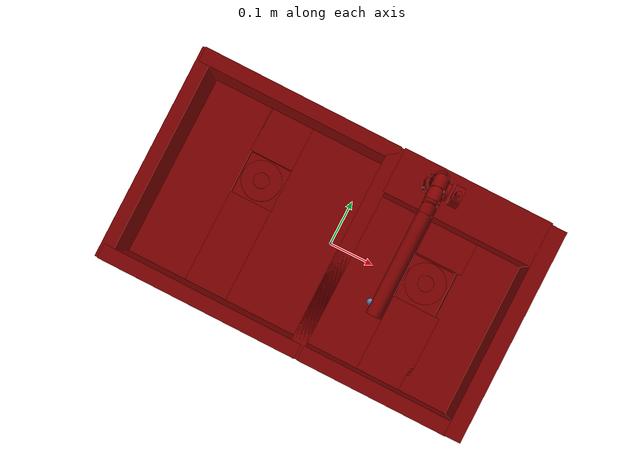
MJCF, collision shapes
<mujoco model="model">
  <compiler angle="radian"/>
  <asset>
    <mesh file="visuals/handle.obj" name="handle_vis"/>
    <mesh file="visuals/Body001.obj" name="Body001_vis"/>
    <mesh file="visuals/Funnel001.obj" name="Funnel001_vis"/>
    <mesh file="visuals/Funnel002.obj" name="Funnel002_vis"/>
    <mesh file="visuals/spout.obj" name="spout_vis"/>
    <texture file="visuals/T_BC001.png" name="Body001_material" type="2d"/>
    <material name="Body001_material" rgba="1 1 1 1.0" texture="Body001_material" shininess="0.5" specular="0.3103448502657381"/>
    <texture file="visuals/T_BC001.png" name="handle_material" type="2d"/>
    <material name="handle_material" rgba="1 1 1 1.0" texture="handle_material" shininess="0.5" specular="0.3103448502657381"/>
    <texture file="visuals/T_BC001.png" name="Funnel001_material" type="2d"/>
    <material name="Funnel001_material" rgba="1 1 1 1.0" texture="Funnel001_material" shininess="0.5" specular="8"/>
    <texture file="visuals/T_BC001.png" name="Funnel002_material" type="2d"/>
    <material name="Funnel002_material" rgba="1 1 1 1.0" texture="Funnel002_material" shininess="0.5" specular="8"/>
    <texture file="visuals/T_BC001.png" name="spout_material" type="2d"/>
    <material name="spout_material" rgba="1 1 1 1.0" texture="spout_material" shininess="0.5" specular="0.3103448502657381"/>
  </asset>
  <default>
    <default class="visual">
      <geom conaffinity="0" contype="0" group="1" type="mesh"/>
    </default>
    <default class="collision">
      <geom group="0" rgba="0.5 0 0 0.5"/>
    </default>
    <default class="spawn">
      <geom group="0" rgba="1 1 1 0.5" contype="0" conaffinity="0"/>
      <site group="0" rgba="1 1 1 0.5"/>
    </default>
    <default class="region">
      <geom group="1" conaffinity="0" contype="0" rgba="0 1 0 0"/>
    </default>
  </default>
  <worldbody>
    <body>
      <body name="object">
        <geom mesh="Body001_vis" type="mesh" solimp="0.998 0.998 0.001" solref="0.001 1" density="100" friction="0.95 0.3 0.1" class="visual" material="Body001_material"/>
        <geom class="collision" type="box" pos="-0.425717 0.000000 -0.158188" size="0.015395124442875385 0.2547001242637634 0.13493360579013824" quat="1.0 0.0 0.0 0.0"/>
        <geom class="collision" type="box" pos="0.035850 0.000000 -0.121876" size="0.017109353095293045 0.2547016441822052 0.09863083064556122" quat="1.0 0.0 0.0 0.0"/>
        <geom class="collision" type="box" pos="0.035850 0.000000 -0.121876" size="0.017109353095293045 0.25470155477523804 0.09863083064556122" quat="1.0 0.0 0.0 0.0"/>
        <geom class="collision" type="box" pos="0.423824 0.000000 -0.093688" size="0.01950429193675518 0.25470009446144104 0.0711282268166542" quat="1.0 0.0 0.0 0.0"/>
        <geom class="collision" type="box" pos="0.116620 0.000000 -0.230343" size="0.06256961822509766 0.2547013759613037 0.06743481010198593" quat="1.0 0.0 0.0 0.0"/>
        <geom class="collision" type="box" pos="0.364025 0.000000 -0.230343" size="0.07800733298063278 0.2546995282173157 0.06743429601192474" quat="1.0 0.0 0.0 0.0"/>
        <geom class="collision" type="box" pos="-0.352534 0.000000 -0.256257" size="0.08836613595485687 0.25470009446144104 0.038767118006944656" quat="1.0 0.0 0.0 0.0"/>
        <geom class="collision" type="box" pos="-0.053399 0.000000 -0.256257" size="0.10605170577764511 0.2547011077404022 0.03876727074384689" quat="1.0 0.0 0.0 0.0"/>
        <geom class="collision" type="box" pos="-0.209941 -0.122636 -0.256257" size="0.05668779835104942 0.1304006427526474 0.038767021149396896" quat="1.0 0.0 0.0 0.0"/>
        <geom class="collision" type="box" pos="0.231300 -0.145325 -0.230343" size="0.06376252323389053 0.10877308994531631 0.06743433326482773" quat="1.0 0.0 0.0 0.0"/>
        <geom class="collision" type="box" pos="-0.209941 0.183683 -0.256257" size="0.056687984615564346 0.07053600251674652 0.03876719996333122" quat="1.0 0.0 0.0 0.0"/>
        <geom class="collision" type="box" pos="0.228146 0.164233 -0.230343" size="0.06691604852676392 0.08990631997585297 0.06743444502353668" quat="1.0 0.0 0.0 0.0"/>
        <geom class="collision" type="box" pos="-0.196300 0.239532 -0.121876" size="0.2385966032743454 0.017109399661421776 0.09863083064556122" quat="1.0 0.0 0.0 0.0"/>
        <geom class="collision" type="box" pos="-0.196300 -0.238986 -0.121876" size="0.23859664797782898 0.017109399661421776 0.09863083064556122" quat="1.0 0.0 0.0 0.0"/>
        <geom class="collision" type="box" pos="0.228493 -0.238288 -0.093688" size="0.17905189096927643 0.017541052773594856 0.07112782448530197" quat="1.0 0.0 0.0 0.0"/>
        <geom class="collision" type="box" pos="0.228493 0.205536 -0.093568" size="0.17905189096927643 0.052950456738471985 0.07041750103235245" quat="1.0 0.0 0.0 0.0"/>
        <geom class="collision" type="box" pos="-0.210803 0.059671 -0.266439" size="0.052380383014678955 0.05304465815424919 0.02818472497165203" quat="1.0 0.0 0.0 0.0"/>
        <geom class="collision" type="box" pos="0.232873 0.016752 -0.239677" size="0.05143110826611519 0.054323095828294754 0.058316051959991455" quat="1.0 0.0 0.0 0.0"/>
        <geom class="collision" type="cylinder" pos="0.137454 0.209498 0.021306" size="0.020850198343396187 0.04329083487391472" quat="1.0 0.0 0.0 0.0"/>
        <geom class="collision" type="cylinder" pos="0.147107 0.209498 0.018919" size="0.019538551568984985 0.0267647672444582" quat="0.70710688829422 -4.7503021960437763e-08 0.7071066498756409 4.750300774958305e-08"/>
        <body name="handle">
          <joint axis="1.0 0.0 0.0" pos="0.188923 0.209862 0.019046" limited="true" name="handle_joint_hinge_0" type="hinge" range="-0.7853981633974483 0.7853981633974483" damping="1" frictionloss="1" armature=".01" stiffness="0.05"/>
          <joint axis="0.0 1.0 0.0" pos="0.188923 0.209862 0.019046" limited="true" name="handle_joint_hinge_1" type="hinge" range="0.0 0.17453292519943295" damping="1" frictionloss="1" armature=".01" stiffness="0.05"/>
          <geom mesh="handle_vis" type="mesh" solimp="0.998 0.998 0.001" solref="0.001 1" density="100" friction="0.95 0.3 0.1" class="visual" material="handle_material"/>
          <geom class="collision" type="cylinder" pos="0.192223 0.209862 0.019046" size="0.023732485249638557 0.010955640114843845" quat="1.3767879636361613e-07 0.70710688829422 1.3767875373105198e-07 -0.7071066498756409"/>
          <geom class="collision" type="cylinder" pos="0.189257 0.209862 0.074044" size="0.005598940420895815 0.03571911156177521" quat="7.549793679118011e-08 1.0 1.9470721213110664e-07 -1.9470718370939721e-07"/>
        </body>
        <body name="Funnel001">
          <joint axis="0.0 0.0 1.0" pos="0.231312 0.021097 -0.169561" limited="true" name="Funnel001_joint" range="0.0 0.1" type="slide" damping="1" frictionloss="1" armature=".01" stiffness="0.05"/>
          <geom mesh="Funnel001_vis" type="mesh" solimp="0.998 0.998 0.001" solref="0.001 1" density="100" friction="0.95 0.3 0.1" class="visual" material="Funnel001_material"/>
          <geom class="collision" type="cylinder" pos="0.231312 0.021097 -0.172197" size="0.04806622490286827 0.0029088398441672325" quat="1.0 0.0 0.0 0.0"/>
          <geom class="collision" type="cylinder" pos="0.231312 0.021097 -0.166942" size="0.01890081912279129 0.0029088398441672325" quat="1.0 0.0 0.0 0.0"/>
        </body>
        <body name="Funnel002">
          <joint axis="0.0 0.0 1.0" pos="-0.212200 0.061354 -0.224755" limited="true" name="Funnel002_joint" range="0.0 0.1" type="slide" damping="1" frictionloss="1" armature=".01" stiffness="0.05"/>
          <geom mesh="Funnel002_vis" type="mesh" solimp="0.998 0.998 0.001" solref="0.001 1" density="100" friction="0.95 0.3 0.1" class="visual" material="Funnel002_material"/>
          <geom class="collision" type="cylinder" pos="-0.212200 0.061354 -0.227047" size="0.04806622490286827 0.003252551658079028" quat="1.0 0.0 0.0 0.0"/>
          <geom class="collision" type="cylinder" pos="-0.212282 0.061454 -0.221370" size="0.018379082903265953 0.0029088398441672325" quat="1.0 0.0 0.0 0.0"/>
        </body>
        <body name="spout">
          <joint axis="0.0 0.0 1.0" pos="0.137956 0.208565 0.176733" limited="true" name="spout_joint" range="-0.7853981633974483 0.7853981633974483" type="hinge" damping="1" frictionloss="1" armature=".01" stiffness="0.05"/>
          <site type="cylinder" rgba="0.5 0.75 1 1" size="0.007777536287903786 0.26257792115211487" pos="0.138546 -0.073109 -0.003108" name="water"/>
          <geom mesh="spout_vis" type="mesh" solimp="0.998 0.998 0.001" solref="0.001 1" density="100" friction="0.95 0.3 0.1" class="visual" material="spout_material"/>
          <geom class="collision" type="cylinder" pos="0.138546 0.209858 0.139351" size="0.015804527327418327 0.07127916067838669" quat="1.0 0.0 0.0 0.0"/>
          <geom class="collision" type="cylinder" pos="0.138546 0.017698 0.280258" size="0.015804527327418327 0.10919349640607834" quat="0.7071068286895752 0.7071067690849304 -1.5700922994638892e-16 -1.528541381711287e-23"/>
          <geom class="collision" type="cylinder" pos="0.138546 -0.073028 0.266392" size="0.011412599124014378 0.008912387304008007" quat="7.549790126404332e-08 1.0 -2.220446049250313e-16 -1.7645063234279917e-24"/>
          <geom class="collision" type="cylinder" pos="0.138546 0.205578 0.225876" size="0.015804527327418327 0.020363805815577507" quat="0.9921587109565735 0.12498420476913452 -2.775201708463371e-17 -8.194459891495167e-24"/>
          <geom class="collision" type="cylinder" pos="0.138546 0.189462 0.254179" size="0.015804527327418327 0.020363805815577507" quat="0.9194023609161377 0.3933183252811432 -8.733419891193659e-17 7.110583151522317e-24"/>
          <geom class="collision" type="cylinder" pos="0.138546 0.161341 0.273738" size="0.015804527327418327 0.020363805815577507" quat="0.8493955731391907 0.5277566909790039 -1.1718551271008496e-16 7.803923256312832e-24"/>
          <geom class="collision" type="cylinder" pos="0.138546 0.137168 0.280185" size="0.015804527327418327 0.020363805815577507" quat="0.7066156268119812 0.7075976133346558 -1.571181927941193e-16 8.88234975629151e-24"/>
        </body>
        <geom class="region" name="reg_main" type="box" pos="0.0 0.0 -0.1586335" size="0.439077 0.251329 0.1352595"/>
        <geom class="region" name="reg_basin_left" type="box" pos="-0.19786700000000002 -0.0015069999999999945 -0.122499" size="0.213816 0.22345900000000002 0.093994"/>
        <geom class="region" name="reg_basin_right" type="box" pos="0.2323395 -0.036483 -0.0940465" size="0.17928049999999998 0.188483 0.0655415"/>
      </body>
    </body>
  </worldbody>
  <actuator>
    <motor name="handle_joint_hinge_0_actuator" joint="handle_joint_hinge_0" gear="10"/>
    <motor name="handle_joint_hinge_1_actuator" joint="handle_joint_hinge_1" gear="10"/>
    <motor name="Funnel001_joint_actuator" joint="Funnel001_joint" gear="5"/>
    <motor name="Funnel002_joint_actuator" joint="Funnel002_joint" gear="5"/>
    <motor name="spout_joint_actuator" joint="spout_joint" gear="10"/>
  </actuator>
</mujoco>
